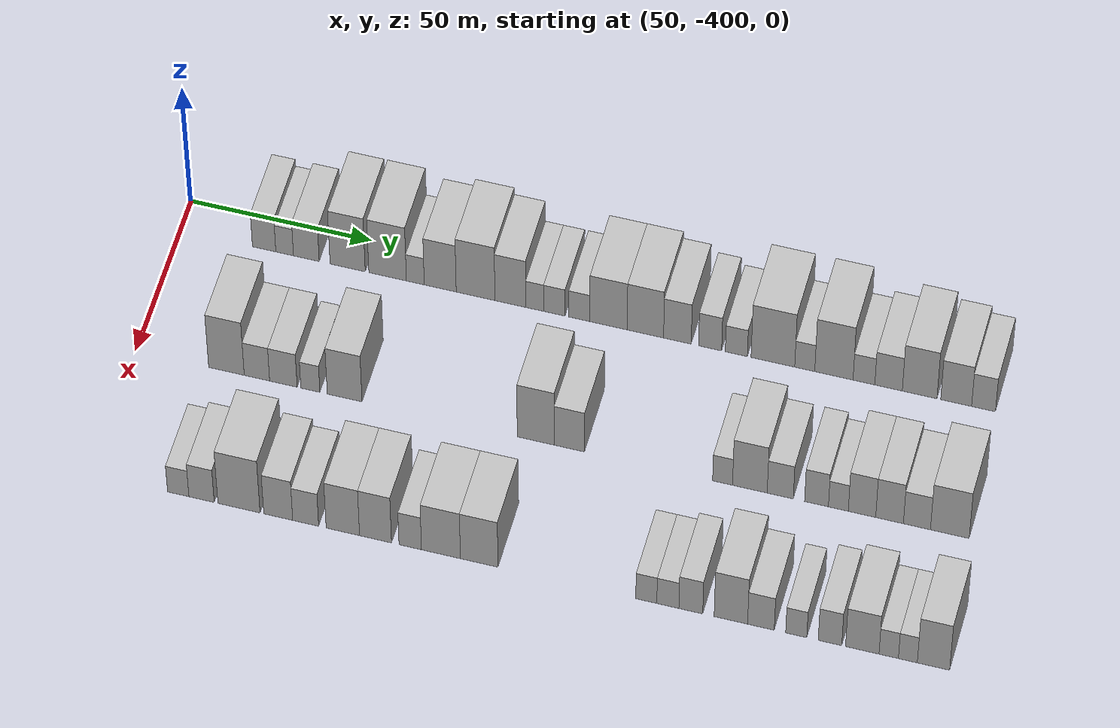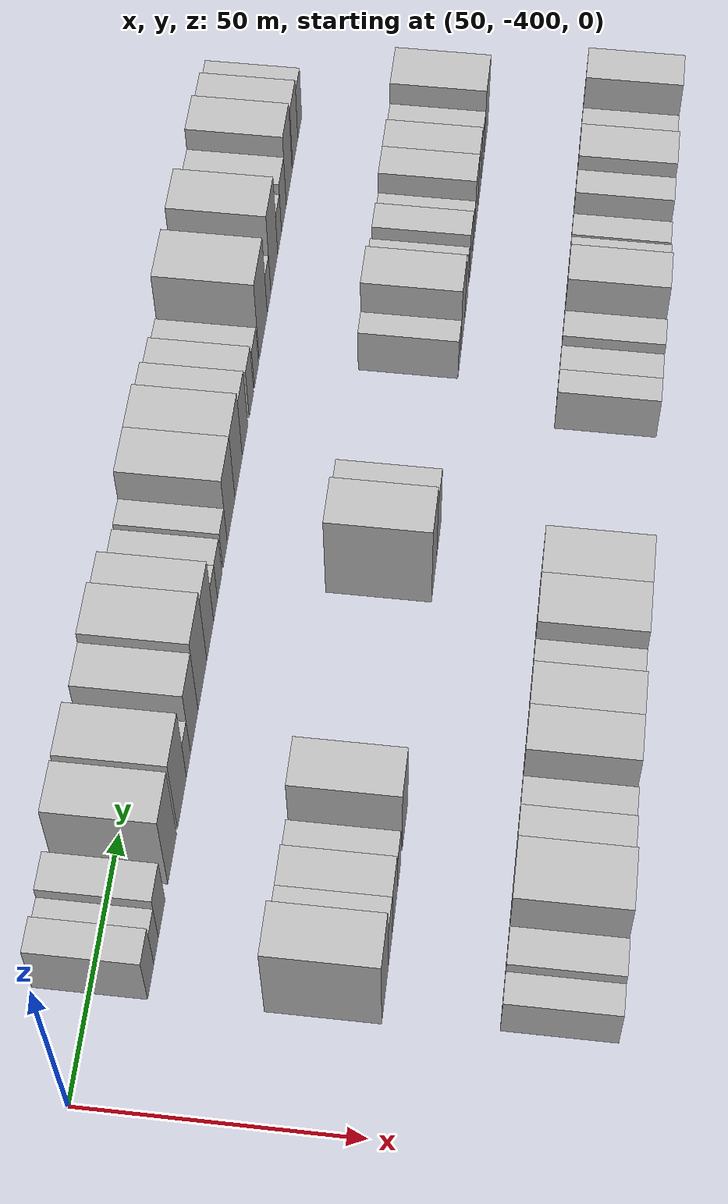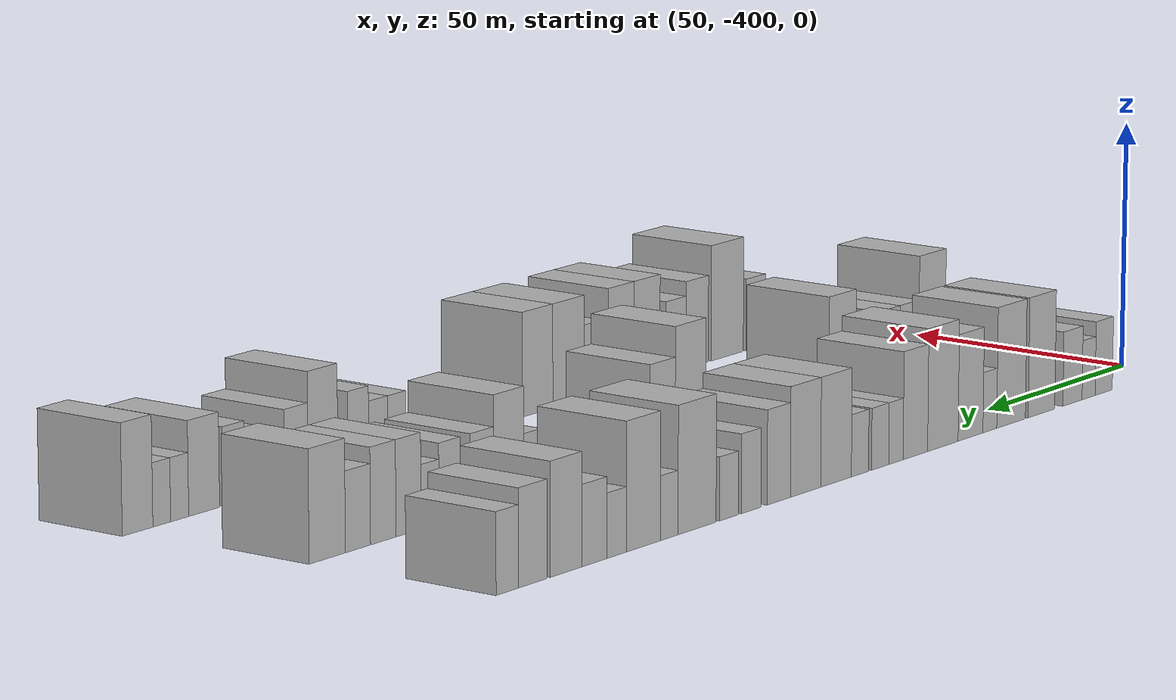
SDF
<sdf version="1.6">
 <world name="default">
  <model name="building_1">
   <static>1</static>
   <pose>50.0000 -376.7709 0 0.000000 0.000000 0.000000</pose>
   <link name="link">
    <pose>0 0 7.50 0 0 0</pose>
    <collision name="collision"><geometry><box><size>20.0000 6.4582 15.0000</size></box></geometry></collision>
    <visual name="visual">
     <cast_shadows>0</cast_shadows>
     <geometry><box><size>20.0000 6.4582 15.0000</size></box></geometry>
     <material>
      <script>
       <uri>model://HANNAS_wall/materials/scripts</uri>
       <uri>model://HANNAS_wall/materials/textures</uri>
       <name>vrc/HANNAS_wall</name>
      </script>
     </material>
    </visual>
   </link>
  </model>
  <model name="building_2">
   <static>1</static>
   <pose>50.0000 -371.1102 0 0.000000 0.000000 0.000000</pose>
   <link name="link">
    <pose>0 0 6.00 0 0 0</pose>
    <collision name="collision"><geometry><box><size>20.0000 4.8632 12.0000</size></box></geometry></collision>
    <visual name="visual">
     <cast_shadows>0</cast_shadows>
     <geometry><box><size>20.0000 4.8632 12.0000</size></box></geometry>
     <material>
      <script>
       <uri>model://HANNAS_wall/materials/scripts</uri>
       <uri>model://HANNAS_wall/materials/textures</uri>
       <name>vrc/HANNAS_wall</name>
      </script>
     </material>
    </visual>
   </link>
  </model>
  <model name="building_3">
   <static>1</static>
   <pose>50.0000 -365.1299 0 0.000000 0.000000 0.000000</pose>
   <link name="link">
    <pose>0 0 7.50 0 0 0</pose>
    <collision name="collision"><geometry><box><size>20.0000 7.0973 15.0000</size></box></geometry></collision>
    <visual name="visual">
     <cast_shadows>0</cast_shadows>
     <geometry><box><size>20.0000 7.0973 15.0000</size></box></geometry>
     <material>
      <script>
       <uri>model://HANNAS_wall/materials/scripts</uri>
       <uri>model://HANNAS_wall/materials/textures</uri>
       <name>vrc/HANNAS_wall</name>
      </script>
     </material>
    </visual>
   </link>
  </model>
  <model name="building_4">
   <static>1</static>
   <pose>50.0000 -353.7452 0 0.000000 0.000000 0.000000</pose>
   <link name="link">
    <pose>0 0 12.00 0 0 0</pose>
    <collision name="collision"><geometry><box><size>20.0000 9.6722 24.0000</size></box></geometry></collision>
    <visual name="visual">
     <cast_shadows>0</cast_shadows>
     <geometry><box><size>20.0000 9.6722 24.0000</size></box></geometry>
     <material>
      <script>
       <uri>model://HANNAS_wall/materials/scripts</uri>
       <uri>model://HANNAS_wall/materials/textures</uri>
       <name>vrc/HANNAS_wall</name>
      </script>
     </material>
    </visual>
   </link>
  </model>
  <model name="building_5">
   <static>1</static>
   <pose>50.0000 -342.7592 0 0.000000 0.000000 0.000000</pose>
   <link name="link">
    <pose>0 0 12.00 0 0 0</pose>
    <collision name="collision"><geometry><box><size>20.0000 10.2998 24.0000</size></box></geometry></collision>
    <visual name="visual">
     <cast_shadows>0</cast_shadows>
     <geometry><box><size>20.0000 10.2998 24.0000</size></box></geometry>
     <material>
      <script>
       <uri>model://HANNAS_wall/materials/scripts</uri>
       <uri>model://HANNAS_wall/materials/textures</uri>
       <name>vrc/HANNAS_wall</name>
      </script>
     </material>
    </visual>
   </link>
  </model>
  <model name="building_6">
   <static>1</static>
   <pose>50.0000 -335.1604 0 0.000000 0.000000 0.000000</pose>
   <link name="link">
    <pose>0 0 6.00 0 0 0</pose>
    <collision name="collision"><geometry><box><size>20.0000 4.8978 12.0000</size></box></geometry></collision>
    <visual name="visual">
     <cast_shadows>0</cast_shadows>
     <geometry><box><size>20.0000 4.8978 12.0000</size></box></geometry>
     <material>
      <script>
       <uri>model://HANNAS_wall/materials/scripts</uri>
       <uri>model://HANNAS_wall/materials/textures</uri>
       <name>vrc/HANNAS_wall</name>
      </script>
     </material>
    </visual>
   </link>
  </model>
  <model name="building_7">
   <static>1</static>
   <pose>50.0000 -328.3325 0 0.000000 0.000000 0.000000</pose>
   <link name="link">
    <pose>0 0 10.50 0 0 0</pose>
    <collision name="collision"><geometry><box><size>20.0000 8.7580 21.0000</size></box></geometry></collision>
    <visual name="visual">
     <cast_shadows>0</cast_shadows>
     <geometry><box><size>20.0000 8.7580 21.0000</size></box></geometry>
     <material>
      <script>
       <uri>model://HANNAS_wall/materials/scripts</uri>
       <uri>model://HANNAS_wall/materials/textures</uri>
       <name>vrc/HANNAS_wall</name>
      </script>
     </material>
    </visual>
   </link>
  </model>
  <model name="building_8">
   <static>1</static>
   <pose>50.0000 -318.6570 0 0.000000 0.000000 0.000000</pose>
   <link name="link">
    <pose>0 0 12.00 0 0 0</pose>
    <collision name="collision"><geometry><box><size>20.0000 10.5930 24.0000</size></box></geometry></collision>
    <visual name="visual">
     <cast_shadows>0</cast_shadows>
     <geometry><box><size>20.0000 10.5930 24.0000</size></box></geometry>
     <material>
      <script>
       <uri>model://HANNAS_wall/materials/scripts</uri>
       <uri>model://HANNAS_wall/materials/textures</uri>
       <name>vrc/HANNAS_wall</name>
      </script>
     </material>
    </visual>
   </link>
  </model>
  <model name="building_9">
   <static>1</static>
   <pose>50.0000 -309.1491 0 0.000000 0.000000 0.000000</pose>
   <link name="link">
    <pose>0 0 10.50 0 0 0</pose>
    <collision name="collision"><geometry><box><size>20.0000 8.4227 21.0000</size></box></geometry></collision>
    <visual name="visual">
     <cast_shadows>0</cast_shadows>
     <geometry><box><size>20.0000 8.4227 21.0000</size></box></geometry>
     <material>
      <script>
       <uri>model://HANNAS_wall/materials/scripts</uri>
       <uri>model://HANNAS_wall/materials/textures</uri>
       <name>vrc/HANNAS_wall</name>
      </script>
     </material>
    </visual>
   </link>
  </model>
  <model name="building_10">
   <static>1</static>
   <pose>50.0000 -302.4947 0 0.000000 0.000000 0.000000</pose>
   <link name="link">
    <pose>0 0 6.00 0 0 0</pose>
    <collision name="collision"><geometry><box><size>20.0000 4.8862 12.0000</size></box></geometry></collision>
    <visual name="visual">
     <cast_shadows>0</cast_shadows>
     <geometry><box><size>20.0000 4.8862 12.0000</size></box></geometry>
     <material>
      <script>
       <uri>model://HANNAS_wall/materials/scripts</uri>
       <uri>model://HANNAS_wall/materials/textures</uri>
       <name>vrc/HANNAS_wall</name>
      </script>
     </material>
    </visual>
   </link>
  </model>
  <model name="building_11">
   <static>1</static>
   <pose>50.0000 -297.1440 0 0.000000 0.000000 0.000000</pose>
   <link name="link">
    <pose>0 0 6.00 0 0 0</pose>
    <collision name="collision"><geometry><box><size>20.0000 5.8152 12.0000</size></box></geometry></collision>
    <visual name="visual">
     <cast_shadows>0</cast_shadows>
     <geometry><box><size>20.0000 5.8152 12.0000</size></box></geometry>
     <material>
      <script>
       <uri>model://HANNAS_wall/materials/scripts</uri>
       <uri>model://HANNAS_wall/materials/textures</uri>
       <name>vrc/HANNAS_wall</name>
      </script>
     </material>
    </visual>
   </link>
  </model>
  <model name="building_12">
   <static>1</static>
   <pose>50.0000 -290.3620 0 0.000000 0.000000 0.000000</pose>
   <link name="link">
    <pose>0 0 6.00 0 0 0</pose>
    <collision name="collision"><geometry><box><size>20.0000 5.7487 12.0000</size></box></geometry></collision>
    <visual name="visual">
     <cast_shadows>0</cast_shadows>
     <geometry><box><size>20.0000 5.7487 12.0000</size></box></geometry>
     <material>
      <script>
       <uri>model://HANNAS_wall/materials/scripts</uri>
       <uri>model://HANNAS_wall/materials/textures</uri>
       <name>vrc/HANNAS_wall</name>
      </script>
     </material>
    </visual>
   </link>
  </model>
  <model name="building_13">
   <static>1</static>
   <pose>50.0000 -282.4075 0 0.000000 0.000000 0.000000</pose>
   <link name="link">
    <pose>0 0 10.50 0 0 0</pose>
    <collision name="collision"><geometry><box><size>20.0000 10.1604 21.0000</size></box></geometry></collision>
    <visual name="visual">
     <cast_shadows>0</cast_shadows>
     <geometry><box><size>20.0000 10.1604 21.0000</size></box></geometry>
     <material>
      <script>
       <uri>model://HANNAS_wall/materials/scripts</uri>
       <uri>model://HANNAS_wall/materials/textures</uri>
       <name>vrc/HANNAS_wall</name>
      </script>
     </material>
    </visual>
   </link>
  </model>
  <model name="building_14">
   <static>1</static>
   <pose>50.0000 -272.3864 0 0.000000 0.000000 0.000000</pose>
   <link name="link">
    <pose>0 0 10.50 0 0 0</pose>
    <collision name="collision"><geometry><box><size>20.0000 9.8817 21.0000</size></box></geometry></collision>
    <visual name="visual">
     <cast_shadows>0</cast_shadows>
     <geometry><box><size>20.0000 9.8817 21.0000</size></box></geometry>
     <material>
      <script>
       <uri>model://HANNAS_wall/materials/scripts</uri>
       <uri>model://HANNAS_wall/materials/textures</uri>
       <name>vrc/HANNAS_wall</name>
      </script>
     </material>
    </visual>
   </link>
  </model>
  <model name="building_15">
   <static>1</static>
   <pose>50.0000 -263.7044 0 0.000000 0.000000 0.000000</pose>
   <link name="link">
    <pose>0 0 9.00 0 0 0</pose>
    <collision name="collision"><geometry><box><size>20.0000 7.4823 18.0000</size></box></geometry></collision>
    <visual name="visual">
     <cast_shadows>0</cast_shadows>
     <geometry><box><size>20.0000 7.4823 18.0000</size></box></geometry>
     <material>
      <script>
       <uri>model://HANNAS_wall/materials/scripts</uri>
       <uri>model://HANNAS_wall/materials/textures</uri>
       <name>vrc/HANNAS_wall</name>
      </script>
     </material>
    </visual>
   </link>
  </model>
  <model name="building_16">
   <static>1</static>
   <pose>50.0000 -254.8468 0 0.000000 0.000000 0.000000</pose>
   <link name="link">
    <pose>0 0 7.50 0 0 0</pose>
    <collision name="collision"><geometry><box><size>20.0000 6.2329 15.0000</size></box></geometry></collision>
    <visual name="visual">
     <cast_shadows>0</cast_shadows>
     <geometry><box><size>20.0000 6.2329 15.0000</size></box></geometry>
     <material>
      <script>
       <uri>model://HANNAS_wall/materials/scripts</uri>
       <uri>model://HANNAS_wall/materials/textures</uri>
       <name>vrc/HANNAS_wall</name>
      </script>
     </material>
    </visual>
   </link>
  </model>
  <model name="building_17">
   <static>1</static>
   <pose>50.0000 -247.7488 0 0.000000 0.000000 0.000000</pose>
   <link name="link">
    <pose>0 0 6.00 0 0 0</pose>
    <collision name="collision"><geometry><box><size>20.0000 5.9631 12.0000</size></box></geometry></collision>
    <visual name="visual">
     <cast_shadows>0</cast_shadows>
     <geometry><box><size>20.0000 5.9631 12.0000</size></box></geometry>
     <material>
      <script>
       <uri>model://HANNAS_wall/materials/scripts</uri>
       <uri>model://HANNAS_wall/materials/textures</uri>
       <name>vrc/HANNAS_wall</name>
      </script>
     </material>
    </visual>
   </link>
  </model>
  <model name="building_18">
   <static>1</static>
   <pose>50.0000 -237.8741 0 0.000000 0.000000 0.000000</pose>
   <link name="link">
    <pose>0 0 12.00 0 0 0</pose>
    <collision name="collision"><geometry><box><size>20.0000 11.7863 24.0000</size></box></geometry></collision>
    <visual name="visual">
     <cast_shadows>0</cast_shadows>
     <geometry><box><size>20.0000 11.7863 24.0000</size></box></geometry>
     <material>
      <script>
       <uri>model://HANNAS_wall/materials/scripts</uri>
       <uri>model://HANNAS_wall/materials/textures</uri>
       <name>vrc/HANNAS_wall</name>
      </script>
     </material>
    </visual>
   </link>
  </model>
  <model name="building_19">
   <static>1</static>
   <pose>50.0000 -229.2818 0 0.000000 0.000000 0.000000</pose>
   <link name="link">
    <pose>0 0 6.00 0 0 0</pose>
    <collision name="collision"><geometry><box><size>20.0000 5.3983 12.0000</size></box></geometry></collision>
    <visual name="visual">
     <cast_shadows>0</cast_shadows>
     <geometry><box><size>20.0000 5.3983 12.0000</size></box></geometry>
     <material>
      <script>
       <uri>model://HANNAS_wall/materials/scripts</uri>
       <uri>model://HANNAS_wall/materials/textures</uri>
       <name>vrc/HANNAS_wall</name>
      </script>
     </material>
    </visual>
   </link>
  </model>
  <model name="building_20">
   <static>1</static>
   <pose>50.0000 -221.4287 0 0.000000 0.000000 0.000000</pose>
   <link name="link">
    <pose>0 0 12.00 0 0 0</pose>
    <collision name="collision"><geometry><box><size>20.0000 10.3080 24.0000</size></box></geometry></collision>
    <visual name="visual">
     <cast_shadows>0</cast_shadows>
     <geometry><box><size>20.0000 10.3080 24.0000</size></box></geometry>
     <material>
      <script>
       <uri>model://HANNAS_wall/materials/scripts</uri>
       <uri>model://HANNAS_wall/materials/textures</uri>
       <name>vrc/HANNAS_wall</name>
      </script>
     </material>
    </visual>
   </link>
  </model>
  <model name="building_21">
   <static>1</static>
   <pose>50.0000 -213.3474 0 0.000000 0.000000 0.000000</pose>
   <link name="link">
    <pose>0 0 6.00 0 0 0</pose>
    <collision name="collision"><geometry><box><size>20.0000 5.8545 12.0000</size></box></geometry></collision>
    <visual name="visual">
     <cast_shadows>0</cast_shadows>
     <geometry><box><size>20.0000 5.8545 12.0000</size></box></geometry>
     <material>
      <script>
       <uri>model://HANNAS_wall/materials/scripts</uri>
       <uri>model://HANNAS_wall/materials/textures</uri>
       <name>vrc/HANNAS_wall</name>
      </script>
     </material>
    </visual>
   </link>
  </model>
  <model name="building_22">
   <static>1</static>
   <pose>50.0000 -206.7290 0 0.000000 0.000000 0.000000</pose>
   <link name="link">
    <pose>0 0 7.50 0 0 0</pose>
    <collision name="collision"><geometry><box><size>20.0000 7.3823 15.0000</size></box></geometry></collision>
    <visual name="visual">
     <cast_shadows>0</cast_shadows>
     <geometry><box><size>20.0000 7.3823 15.0000</size></box></geometry>
     <material>
      <script>
       <uri>model://HANNAS_wall/materials/scripts</uri>
       <uri>model://HANNAS_wall/materials/textures</uri>
       <name>vrc/HANNAS_wall</name>
      </script>
     </material>
    </visual>
   </link>
  </model>
  <model name="building_23">
   <static>1</static>
   <pose>50.0000 -198.3898 0 0.000000 0.000000 0.000000</pose>
   <link name="link">
    <pose>0 0 10.50 0 0 0</pose>
    <collision name="collision"><geometry><box><size>20.0000 9.2961 21.0000</size></box></geometry></collision>
    <visual name="visual">
     <cast_shadows>0</cast_shadows>
     <geometry><box><size>20.0000 9.2961 21.0000</size></box></geometry>
     <material>
      <script>
       <uri>model://HANNAS_wall/materials/scripts</uri>
       <uri>model://HANNAS_wall/materials/textures</uri>
       <name>vrc/HANNAS_wall</name>
      </script>
     </material>
    </visual>
   </link>
  </model>
  <model name="building_24">
   <static>1</static>
   <pose>50.0000 -188.6085 0 0.000000 0.000000 0.000000</pose>
   <link name="link">
    <pose>0 0 9.00 0 0 0</pose>
    <collision name="collision"><geometry><box><size>20.0000 8.2665 18.0000</size></box></geometry></collision>
    <visual name="visual">
     <cast_shadows>0</cast_shadows>
     <geometry><box><size>20.0000 8.2665 18.0000</size></box></geometry>
     <material>
      <script>
       <uri>model://HANNAS_wall/materials/scripts</uri>
       <uri>model://HANNAS_wall/materials/textures</uri>
       <name>vrc/HANNAS_wall</name>
      </script>
     </material>
    </visual>
   </link>
  </model>
  <model name="building_25">
   <static>1</static>
   <pose>50.0000 -181.2819 0 0.000000 0.000000 0.000000</pose>
   <link name="link">
    <pose>0 0 7.50 0 0 0</pose>
    <collision name="collision"><geometry><box><size>20.0000 6.3867 15.0000</size></box></geometry></collision>
    <visual name="visual">
     <cast_shadows>0</cast_shadows>
     <geometry><box><size>20.0000 6.3867 15.0000</size></box></geometry>
     <material>
      <script>
       <uri>model://HANNAS_wall/materials/scripts</uri>
       <uri>model://HANNAS_wall/materials/textures</uri>
       <name>vrc/HANNAS_wall</name>
      </script>
     </material>
    </visual>
   </link>
  </model>
  <model name="building_88">
   <static>1</static>
   <pose>90.0000 -375.1487 0 0.000000 0.000000 0.000000</pose>
   <link name="link">
    <pose>0 0 12.00 0 0 0</pose>
    <collision name="collision"><geometry><box><size>20.0000 9.7027 24.0000</size></box></geometry></collision>
    <visual name="visual">
     <cast_shadows>0</cast_shadows>
     <geometry><box><size>20.0000 9.7027 24.0000</size></box></geometry>
     <material>
      <script>
       <uri>model://HANNAS_wall/materials/scripts</uri>
       <uri>model://HANNAS_wall/materials/textures</uri>
       <name>vrc/HANNAS_wall</name>
      </script>
     </material>
    </visual>
   </link>
  </model>
  <model name="building_89">
   <static>1</static>
   <pose>90.0000 -366.8380 0 0.000000 0.000000 0.000000</pose>
   <link name="link">
    <pose>0 0 7.50 0 0 0</pose>
    <collision name="collision"><geometry><box><size>20.0000 6.9186 15.0000</size></box></geometry></collision>
    <visual name="visual">
     <cast_shadows>0</cast_shadows>
     <geometry><box><size>20.0000 6.9186 15.0000</size></box></geometry>
     <material>
      <script>
       <uri>model://HANNAS_wall/materials/scripts</uri>
       <uri>model://HANNAS_wall/materials/textures</uri>
       <name>vrc/HANNAS_wall</name>
      </script>
     </material>
    </visual>
   </link>
  </model>
  <model name="building_90">
   <static>1</static>
   <pose>90.0000 -359.6332 0 0.000000 0.000000 0.000000</pose>
   <link name="link">
    <pose>0 0 7.50 0 0 0</pose>
    <collision name="collision"><geometry><box><size>20.0000 7.4910 15.0000</size></box></geometry></collision>
    <visual name="visual">
     <cast_shadows>0</cast_shadows>
     <geometry><box><size>20.0000 7.4910 15.0000</size></box></geometry>
     <material>
      <script>
       <uri>model://HANNAS_wall/materials/scripts</uri>
       <uri>model://HANNAS_wall/materials/textures</uri>
       <name>vrc/HANNAS_wall</name>
      </script>
     </material>
    </visual>
   </link>
  </model>
  <model name="building_91">
   <static>1</static>
   <pose>90.0000 -352.2921 0 0.000000 0.000000 0.000000</pose>
   <link name="link">
    <pose>0 0 6.00 0 0 0</pose>
    <collision name="collision"><geometry><box><size>20.0000 5.1912 12.0000</size></box></geometry></collision>
    <visual name="visual">
     <cast_shadows>0</cast_shadows>
     <geometry><box><size>20.0000 5.1912 12.0000</size></box></geometry>
     <material>
      <script>
       <uri>model://HANNAS_wall/materials/scripts</uri>
       <uri>model://HANNAS_wall/materials/textures</uri>
       <name>vrc/HANNAS_wall</name>
      </script>
     </material>
    </visual>
   </link>
  </model>
  <model name="building_92">
   <static>1</static>
   <pose>90.0000 -342.9744 0 0.000000 0.000000 0.000000</pose>
   <link name="link">
    <pose>0 0 10.50 0 0 0</pose>
    <collision name="collision"><geometry><box><size>20.0000 9.4441 21.0000</size></box></geometry></collision>
    <visual name="visual">
     <cast_shadows>0</cast_shadows>
     <geometry><box><size>20.0000 9.4441 21.0000</size></box></geometry>
     <material>
      <script>
       <uri>model://HANNAS_wall/materials/scripts</uri>
       <uri>model://HANNAS_wall/materials/textures</uri>
       <name>vrc/HANNAS_wall</name>
      </script>
     </material>
    </visual>
   </link>
  </model>
  <model name="building_93">
   <static>1</static>
   <pose>90.0000 -291.2970 0 0.000000 0.000000 0.000000</pose>
   <link name="link">
    <pose>0 0 12.00 0 0 0</pose>
    <collision name="collision"><geometry><box><size>20.0000 9.9702 24.0000</size></box></geometry></collision>
    <visual name="visual">
     <cast_shadows>0</cast_shadows>
     <geometry><box><size>20.0000 9.9702 24.0000</size></box></geometry>
     <material>
      <script>
       <uri>model://HANNAS_wall/materials/scripts</uri>
       <uri>model://HANNAS_wall/materials/textures</uri>
       <name>vrc/HANNAS_wall</name>
      </script>
     </material>
    </visual>
   </link>
  </model>
  <model name="building_94">
   <static>1</static>
   <pose>90.0000 -282.2538 0 0.000000 0.000000 0.000000</pose>
   <link name="link">
    <pose>0 0 9.00 0 0 0</pose>
    <collision name="collision"><geometry><box><size>20.0000 8.1161 18.0000</size></box></geometry></collision>
    <visual name="visual">
     <cast_shadows>0</cast_shadows>
     <geometry><box><size>20.0000 8.1161 18.0000</size></box></geometry>
     <material>
      <script>
       <uri>model://HANNAS_wall/materials/scripts</uri>
       <uri>model://HANNAS_wall/materials/textures</uri>
       <name>vrc/HANNAS_wall</name>
      </script>
     </material>
    </visual>
   </link>
  </model>
  <model name="building_95">
   <static>1</static>
   <pose>90.0000 -241.2294 0 0.000000 0.000000 0.000000</pose>
   <link name="link">
    <pose>0 0 6.00 0 0 0</pose>
    <collision name="collision"><geometry><box><size>20.0000 5.3109 12.0000</size></box></geometry></collision>
    <visual name="visual">
     <cast_shadows>0</cast_shadows>
     <geometry><box><size>20.0000 5.3109 12.0000</size></box></geometry>
     <material>
      <script>
       <uri>model://HANNAS_wall/materials/scripts</uri>
       <uri>model://HANNAS_wall/materials/textures</uri>
       <name>vrc/HANNAS_wall</name>
      </script>
     </material>
    </visual>
   </link>
  </model>
  <model name="building_96">
   <static>1</static>
   <pose>90.0000 -233.9532 0 0.000000 0.000000 0.000000</pose>
   <link name="link">
    <pose>0 0 10.50 0 0 0</pose>
    <collision name="collision"><geometry><box><size>20.0000 9.2416 21.0000</size></box></geometry></collision>
    <visual name="visual">
     <cast_shadows>0</cast_shadows>
     <geometry><box><size>20.0000 9.2416 21.0000</size></box></geometry>
     <material>
      <script>
       <uri>model://HANNAS_wall/materials/scripts</uri>
       <uri>model://HANNAS_wall/materials/textures</uri>
       <name>vrc/HANNAS_wall</name>
      </script>
     </material>
    </visual>
   </link>
  </model>
  <model name="building_97">
   <static>1</static>
   <pose>90.0000 -225.8507 0 0.000000 0.000000 0.000000</pose>
   <link name="link">
    <pose>0 0 7.50 0 0 0</pose>
    <collision name="collision"><geometry><box><size>20.0000 6.9634 15.0000</size></box></geometry></collision>
    <visual name="visual">
     <cast_shadows>0</cast_shadows>
     <geometry><box><size>20.0000 6.9634 15.0000</size></box></geometry>
     <material>
      <script>
       <uri>model://HANNAS_wall/materials/scripts</uri>
       <uri>model://HANNAS_wall/materials/textures</uri>
       <name>vrc/HANNAS_wall</name>
      </script>
     </material>
    </visual>
   </link>
  </model>
  <model name="building_98">
   <static>1</static>
   <pose>90.0000 -216.2040 0 0.000000 0.000000 0.000000</pose>
   <link name="link">
    <pose>0 0 7.50 0 0 0</pose>
    <collision name="collision"><geometry><box><size>20.0000 6.3301 15.0000</size></box></geometry></collision>
    <visual name="visual">
     <cast_shadows>0</cast_shadows>
     <geometry><box><size>20.0000 6.3301 15.0000</size></box></geometry>
     <material>
      <script>
       <uri>model://HANNAS_wall/materials/scripts</uri>
       <uri>model://HANNAS_wall/materials/textures</uri>
       <name>vrc/HANNAS_wall</name>
      </script>
     </material>
    </visual>
   </link>
  </model>
  <model name="building_99">
   <static>1</static>
   <pose>90.0000 -210.3976 0 0.000000 0.000000 0.000000</pose>
   <link name="link">
    <pose>0 0 6.00 0 0 0</pose>
    <collision name="collision"><geometry><box><size>20.0000 5.2826 12.0000</size></box></geometry></collision>
    <visual name="visual">
     <cast_shadows>0</cast_shadows>
     <geometry><box><size>20.0000 5.2826 12.0000</size></box></geometry>
     <material>
      <script>
       <uri>model://HANNAS_wall/materials/scripts</uri>
       <uri>model://HANNAS_wall/materials/textures</uri>
       <name>vrc/HANNAS_wall</name>
      </script>
     </material>
    </visual>
   </link>
  </model>
  <model name="building_100">
   <static>1</static>
   <pose>90.0000 -204.1148 0 0.000000 0.000000 0.000000</pose>
   <link name="link">
    <pose>0 0 9.00 0 0 0</pose>
    <collision name="collision"><geometry><box><size>20.0000 7.2831 18.0000</size></box></geometry></collision>
    <visual name="visual">
     <cast_shadows>0</cast_shadows>
     <geometry><box><size>20.0000 7.2831 18.0000</size></box></geometry>
     <material>
      <script>
       <uri>model://HANNAS_wall/materials/scripts</uri>
       <uri>model://HANNAS_wall/materials/textures</uri>
       <name>vrc/HANNAS_wall</name>
      </script>
     </material>
    </visual>
   </link>
  </model>
  <model name="building_101">
   <static>1</static>
   <pose>90.0000 -196.8067 0 0.000000 0.000000 0.000000</pose>
   <link name="link">
    <pose>0 0 9.00 0 0 0</pose>
    <collision name="collision"><geometry><box><size>20.0000 7.3331 18.0000</size></box></geometry></collision>
    <visual name="visual">
     <cast_shadows>0</cast_shadows>
     <geometry><box><size>20.0000 7.3331 18.0000</size></box></geometry>
     <material>
      <script>
       <uri>model://HANNAS_wall/materials/scripts</uri>
       <uri>model://HANNAS_wall/materials/textures</uri>
       <name>vrc/HANNAS_wall</name>
      </script>
     </material>
    </visual>
   </link>
  </model>
  <model name="building_102">
   <static>1</static>
   <pose>90.0000 -189.5590 0 0.000000 0.000000 0.000000</pose>
   <link name="link">
    <pose>0 0 7.50 0 0 0</pose>
    <collision name="collision"><geometry><box><size>20.0000 7.1622 15.0000</size></box></geometry></collision>
    <visual name="visual">
     <cast_shadows>0</cast_shadows>
     <geometry><box><size>20.0000 7.1622 15.0000</size></box></geometry>
     <material>
      <script>
       <uri>model://HANNAS_wall/materials/scripts</uri>
       <uri>model://HANNAS_wall/materials/textures</uri>
       <name>vrc/HANNAS_wall</name>
      </script>
     </material>
    </visual>
   </link>
  </model>
  <model name="building_103">
   <static>1</static>
   <pose>90.0000 -180.8641 0 0.000000 0.000000 0.000000</pose>
   <link name="link">
    <pose>0 0 10.50 0 0 0</pose>
    <collision name="collision"><geometry><box><size>20.0000 10.2277 21.0000</size></box></geometry></collision>
    <visual name="visual">
     <cast_shadows>0</cast_shadows>
     <geometry><box><size>20.0000 10.2277 21.0000</size></box></geometry>
     <material>
      <script>
       <uri>model://HANNAS_wall/materials/scripts</uri>
       <uri>model://HANNAS_wall/materials/textures</uri>
       <name>vrc/HANNAS_wall</name>
      </script>
     </material>
    </visual>
   </link>
  </model>
  <model name="building_164">
   <static>1</static>
   <pose>130.0000 -376.1240 0 0.000000 0.000000 0.000000</pose>
   <link name="link">
    <pose>0 0 6.00 0 0 0</pose>
    <collision name="collision"><geometry><box><size>20.0000 5.7519 12.0000</size></box></geometry></collision>
    <visual name="visual">
     <cast_shadows>0</cast_shadows>
     <geometry><box><size>20.0000 5.7519 12.0000</size></box></geometry>
     <material>
      <script>
       <uri>model://HANNAS_wall/materials/scripts</uri>
       <uri>model://HANNAS_wall/materials/textures</uri>
       <name>vrc/HANNAS_wall</name>
      </script>
     </material>
    </visual>
   </link>
  </model>
  <model name="building_165">
   <static>1</static>
   <pose>130.0000 -369.8344 0 0.000000 0.000000 0.000000</pose>
   <link name="link">
    <pose>0 0 7.50 0 0 0</pose>
    <collision name="collision"><geometry><box><size>20.0000 6.8273 15.0000</size></box></geometry></collision>
    <visual name="visual">
     <cast_shadows>0</cast_shadows>
     <geometry><box><size>20.0000 6.8273 15.0000</size></box></geometry>
     <material>
      <script>
       <uri>model://HANNAS_wall/materials/scripts</uri>
       <uri>model://HANNAS_wall/materials/textures</uri>
       <name>vrc/HANNAS_wall</name>
      </script>
     </material>
    </visual>
   </link>
  </model>
  <model name="building_166">
   <static>1</static>
   <pose>130.0000 -359.7531 0 0.000000 0.000000 0.000000</pose>
   <link name="link">
    <pose>0 0 12.00 0 0 0</pose>
    <collision name="collision"><geometry><box><size>20.0000 11.3354 24.0000</size></box></geometry></collision>
    <visual name="visual">
     <cast_shadows>0</cast_shadows>
     <geometry><box><size>20.0000 11.3354 24.0000</size></box></geometry>
     <material>
      <script>
       <uri>model://HANNAS_wall/materials/scripts</uri>
       <uri>model://HANNAS_wall/materials/textures</uri>
       <name>vrc/HANNAS_wall</name>
      </script>
     </material>
    </visual>
   </link>
  </model>
  <model name="building_167">
   <static>1</static>
   <pose>130.0000 -349.1933 0 0.000000 0.000000 0.000000</pose>
   <link name="link">
    <pose>0 0 9.00 0 0 0</pose>
    <collision name="collision"><geometry><box><size>20.0000 7.7841 18.0000</size></box></geometry></collision>
    <visual name="visual">
     <cast_shadows>0</cast_shadows>
     <geometry><box><size>20.0000 7.7841 18.0000</size></box></geometry>
     <material>
      <script>
       <uri>model://HANNAS_wall/materials/scripts</uri>
       <uri>model://HANNAS_wall/materials/textures</uri>
       <name>vrc/HANNAS_wall</name>
      </script>
     </material>
    </visual>
   </link>
  </model>
  <model name="building_168">
   <static>1</static>
   <pose>130.0000 -341.8201 0 0.000000 0.000000 0.000000</pose>
   <link name="link">
    <pose>0 0 7.50 0 0 0</pose>
    <collision name="collision"><geometry><box><size>20.0000 6.9623 15.0000</size></box></geometry></collision>
    <visual name="visual">
     <cast_shadows>0</cast_shadows>
     <geometry><box><size>20.0000 6.9623 15.0000</size></box></geometry>
     <material>
      <script>
       <uri>model://HANNAS_wall/materials/scripts</uri>
       <uri>model://HANNAS_wall/materials/textures</uri>
       <name>vrc/HANNAS_wall</name>
      </script>
     </material>
    </visual>
   </link>
  </model>
  <model name="building_169">
   <static>1</static>
   <pose>130.0000 -331.8595 0 0.000000 0.000000 0.000000</pose>
   <link name="link">
    <pose>0 0 10.50 0 0 0</pose>
    <collision name="collision"><geometry><box><size>20.0000 8.9589 21.0000</size></box></geometry></collision>
    <visual name="visual">
     <cast_shadows>0</cast_shadows>
     <geometry><box><size>20.0000 8.9589 21.0000</size></box></geometry>
     <material>
      <script>
       <uri>model://HANNAS_wall/materials/scripts</uri>
       <uri>model://HANNAS_wall/materials/textures</uri>
       <name>vrc/HANNAS_wall</name>
      </script>
     </material>
    </visual>
   </link>
  </model>
  <model name="building_170">
   <static>1</static>
   <pose>130.0000 -323.1041 0 0.000000 0.000000 0.000000</pose>
   <link name="link">
    <pose>0 0 10.50 0 0 0</pose>
    <collision name="collision"><geometry><box><size>20.0000 8.5519 21.0000</size></box></geometry></collision>
    <visual name="visual">
     <cast_shadows>0</cast_shadows>
     <geometry><box><size>20.0000 8.5519 21.0000</size></box></geometry>
     <material>
      <script>
       <uri>model://HANNAS_wall/materials/scripts</uri>
       <uri>model://HANNAS_wall/materials/textures</uri>
       <name>vrc/HANNAS_wall</name>
      </script>
     </material>
    </visual>
   </link>
  </model>
  <model name="building_171">
   <static>1</static>
   <pose>130.0000 -313.8271 0 0.000000 0.000000 0.000000</pose>
   <link name="link">
    <pose>0 0 7.50 0 0 0</pose>
    <collision name="collision"><geometry><box><size>20.0000 6.0021 15.0000</size></box></geometry></collision>
    <visual name="visual">
     <cast_shadows>0</cast_shadows>
     <geometry><box><size>20.0000 6.0021 15.0000</size></box></geometry>
     <material>
      <script>
       <uri>model://HANNAS_wall/materials/scripts</uri>
       <uri>model://HANNAS_wall/materials/textures</uri>
       <name>vrc/HANNAS_wall</name>
      </script>
     </material>
    </visual>
   </link>
  </model>
  <model name="building_172">
   <static>1</static>
   <pose>130.0000 -305.6318 0 0.000000 0.000000 0.000000</pose>
   <link name="link">
    <pose>0 0 10.50 0 0 0</pose>
    <collision name="collision"><geometry><box><size>20.0000 10.3884 21.0000</size></box></geometry></collision>
    <visual name="visual">
     <cast_shadows>0</cast_shadows>
     <geometry><box><size>20.0000 10.3884 21.0000</size></box></geometry>
     <material>
      <script>
       <uri>model://HANNAS_wall/materials/scripts</uri>
       <uri>model://HANNAS_wall/materials/textures</uri>
       <name>vrc/HANNAS_wall</name>
      </script>
     </material>
    </visual>
   </link>
  </model>
  <model name="building_173">
   <static>1</static>
   <pose>130.0000 -295.4367 0 0.000000 0.000000 0.000000</pose>
   <link name="link">
    <pose>0 0 10.50 0 0 0</pose>
    <collision name="collision"><geometry><box><size>20.0000 10.0019 21.0000</size></box></geometry></collision>
    <visual name="visual">
     <cast_shadows>0</cast_shadows>
     <geometry><box><size>20.0000 10.0019 21.0000</size></box></geometry>
     <material>
      <script>
       <uri>model://HANNAS_wall/materials/scripts</uri>
       <uri>model://HANNAS_wall/materials/textures</uri>
       <name>vrc/HANNAS_wall</name>
      </script>
     </material>
    </visual>
   </link>
  </model>
  <model name="building_174">
   <static>1</static>
   <pose>130.0000 -251.0998 0 0.000000 0.000000 0.000000</pose>
   <link name="link">
    <pose>0 0 6.00 0 0 0</pose>
    <collision name="collision"><geometry><box><size>20.0000 5.5573 12.0000</size></box></geometry></collision>
    <visual name="visual">
     <cast_shadows>0</cast_shadows>
     <geometry><box><size>20.0000 5.5573 12.0000</size></box></geometry>
     <material>
      <script>
       <uri>model://HANNAS_wall/materials/scripts</uri>
       <uri>model://HANNAS_wall/materials/textures</uri>
       <name>vrc/HANNAS_wall</name>
      </script>
     </material>
    </visual>
   </link>
  </model>
  <model name="building_175">
   <static>1</static>
   <pose>130.0000 -245.4089 0 0.000000 0.000000 0.000000</pose>
   <link name="link">
    <pose>0 0 6.00 0 0 0</pose>
    <collision name="collision"><geometry><box><size>20.0000 5.8247 12.0000</size></box></geometry></collision>
    <visual name="visual">
     <cast_shadows>0</cast_shadows>
     <geometry><box><size>20.0000 5.8247 12.0000</size></box></geometry>
     <material>
      <script>
       <uri>model://HANNAS_wall/materials/scripts</uri>
       <uri>model://HANNAS_wall/materials/textures</uri>
       <name>vrc/HANNAS_wall</name>
      </script>
     </material>
    </visual>
   </link>
  </model>
  <model name="building_176">
   <static>1</static>
   <pose>130.0000 -239.3505 0 0.000000 0.000000 0.000000</pose>
   <link name="link">
    <pose>0 0 7.50 0 0 0</pose>
    <collision name="collision"><geometry><box><size>20.0000 6.2920 15.0000</size></box></geometry></collision>
    <visual name="visual">
     <cast_shadows>0</cast_shadows>
     <geometry><box><size>20.0000 6.2920 15.0000</size></box></geometry>
     <material>
      <script>
       <uri>model://HANNAS_wall/materials/scripts</uri>
       <uri>model://HANNAS_wall/materials/textures</uri>
       <name>vrc/HANNAS_wall</name>
      </script>
     </material>
    </visual>
   </link>
  </model>
  <model name="building_177">
   <static>1</static>
   <pose>130.0000 -228.8049 0 0.000000 0.000000 0.000000</pose>
   <link name="link">
    <pose>0 0 10.50 0 0 0</pose>
    <collision name="collision"><geometry><box><size>20.0000 8.7993 21.0000</size></box></geometry></collision>
    <visual name="visual">
     <cast_shadows>0</cast_shadows>
     <geometry><box><size>20.0000 8.7993 21.0000</size></box></geometry>
     <material>
      <script>
       <uri>model://HANNAS_wall/materials/scripts</uri>
       <uri>model://HANNAS_wall/materials/textures</uri>
       <name>vrc/HANNAS_wall</name>
      </script>
     </material>
    </visual>
   </link>
  </model>
  <model name="building_178">
   <static>1</static>
   <pose>130.0000 -220.8939 0 0.000000 0.000000 0.000000</pose>
   <link name="link">
    <pose>0 0 7.50 0 0 0</pose>
    <collision name="collision"><geometry><box><size>20.0000 7.0227 15.0000</size></box></geometry></collision>
    <visual name="visual">
     <cast_shadows>0</cast_shadows>
     <geometry><box><size>20.0000 7.0227 15.0000</size></box></geometry>
     <material>
      <script>
       <uri>model://HANNAS_wall/materials/scripts</uri>
       <uri>model://HANNAS_wall/materials/textures</uri>
       <name>vrc/HANNAS_wall</name>
      </script>
     </material>
    </visual>
   </link>
  </model>
  <model name="building_179">
   <static>1</static>
   <pose>130.0000 -211.6103 0 0.000000 0.000000 0.000000</pose>
   <link name="link">
    <pose>0 0 6.00 0 0 0</pose>
    <collision name="collision"><geometry><box><size>20.0000 5.5445 12.0000</size></box></geometry></collision>
    <visual name="visual">
     <cast_shadows>0</cast_shadows>
     <geometry><box><size>20.0000 5.5445 12.0000</size></box></geometry>
     <material>
      <script>
       <uri>model://HANNAS_wall/materials/scripts</uri>
       <uri>model://HANNAS_wall/materials/textures</uri>
       <name>vrc/HANNAS_wall</name>
      </script>
     </material>
    </visual>
   </link>
  </model>
  <model name="building_180">
   <static>1</static>
   <pose>130.0000 -202.7523 0 0.000000 0.000000 0.000000</pose>
   <link name="link">
    <pose>0 0 7.50 0 0 0</pose>
    <collision name="collision"><geometry><box><size>20.0000 6.1714 15.0000</size></box></geometry></collision>
    <visual name="visual">
     <cast_shadows>0</cast_shadows>
     <geometry><box><size>20.0000 6.1714 15.0000</size></box></geometry>
     <material>
      <script>
       <uri>model://HANNAS_wall/materials/scripts</uri>
       <uri>model://HANNAS_wall/materials/textures</uri>
       <name>vrc/HANNAS_wall</name>
      </script>
     </material>
    </visual>
   </link>
  </model>
  <model name="building_181">
   <static>1</static>
   <pose>130.0000 -194.2880 0 0.000000 0.000000 0.000000</pose>
   <link name="link">
    <pose>0 0 9.00 0 0 0</pose>
    <collision name="collision"><geometry><box><size>20.0000 8.7572 18.0000</size></box></geometry></collision>
    <visual name="visual">
     <cast_shadows>0</cast_shadows>
     <geometry><box><size>20.0000 8.7572 18.0000</size></box></geometry>
     <material>
      <script>
       <uri>model://HANNAS_wall/materials/scripts</uri>
       <uri>model://HANNAS_wall/materials/textures</uri>
       <name>vrc/HANNAS_wall</name>
      </script>
     </material>
    </visual>
   </link>
  </model>
  <model name="building_182">
   <static>1</static>
   <pose>130.0000 -187.3781 0 0.000000 0.000000 0.000000</pose>
   <link name="link">
    <pose>0 0 6.00 0 0 0</pose>
    <collision name="collision"><geometry><box><size>20.0000 5.0626 12.0000</size></box></geometry></collision>
    <visual name="visual">
     <cast_shadows>0</cast_shadows>
     <geometry><box><size>20.0000 5.0626 12.0000</size></box></geometry>
     <material>
      <script>
       <uri>model://HANNAS_wall/materials/scripts</uri>
       <uri>model://HANNAS_wall/materials/textures</uri>
       <name>vrc/HANNAS_wall</name>
      </script>
     </material>
    </visual>
   </link>
  </model>
  <model name="building_183">
   <static>1</static>
   <pose>130.0000 -182.3785 0 0.000000 0.000000 0.000000</pose>
   <link name="link">
    <pose>0 0 6.00 0 0 0</pose>
    <collision name="collision"><geometry><box><size>20.0000 4.9367 12.0000</size></box></geometry></collision>
    <visual name="visual">
     <cast_shadows>0</cast_shadows>
     <geometry><box><size>20.0000 4.9367 12.0000</size></box></geometry>
     <material>
      <script>
       <uri>model://HANNAS_wall/materials/scripts</uri>
       <uri>model://HANNAS_wall/materials/textures</uri>
       <name>vrc/HANNAS_wall</name>
      </script>
     </material>
    </visual>
   </link>
  </model>
  <model name="building_184">
   <static>1</static>
   <pose>130.0000 -175.6839 0 0.000000 0.000000 0.000000</pose>
   <link name="link">
    <pose>0 0 10.50 0 0 0</pose>
    <collision name="collision"><geometry><box><size>20.0000 8.4525 21.0000</size></box></geometry></collision>
    <visual name="visual">
     <cast_shadows>0</cast_shadows>
     <geometry><box><size>20.0000 8.4525 21.0000</size></box></geometry>
     <material>
      <script>
       <uri>model://HANNAS_wall/materials/scripts</uri>
       <uri>model://HANNAS_wall/materials/textures</uri>
       <name>vrc/HANNAS_wall</name>
      </script>
     </material>
    </visual>
   </link>
  </model>
 </world>
</sdf>
